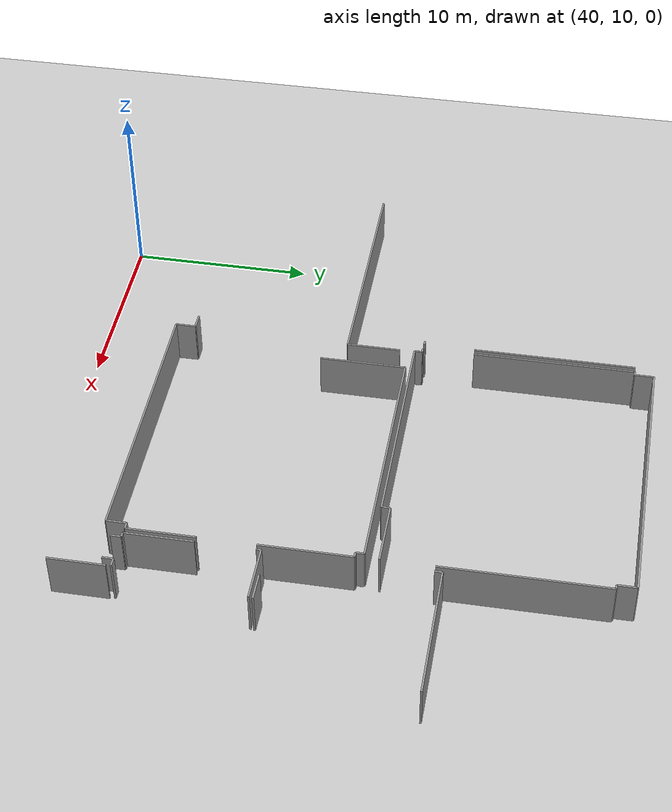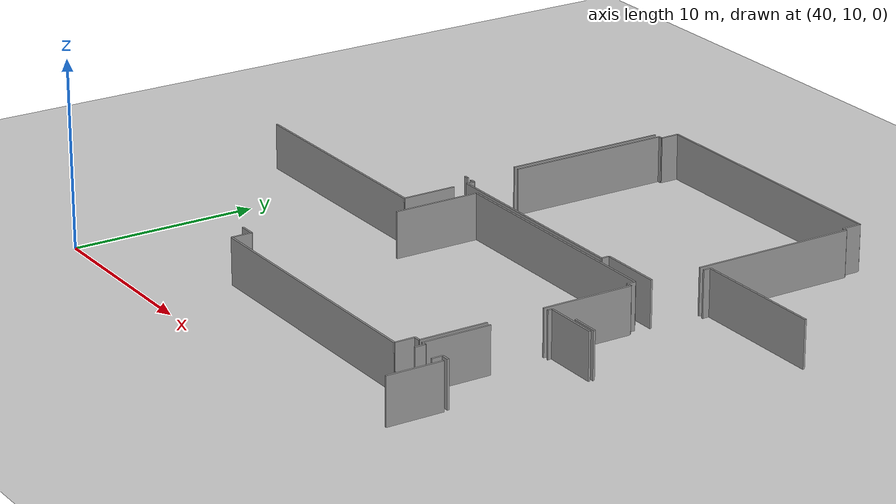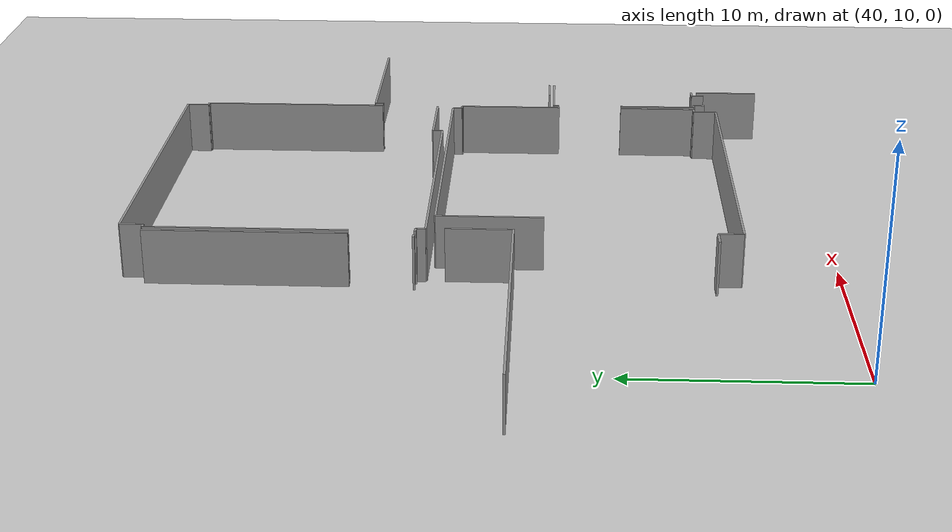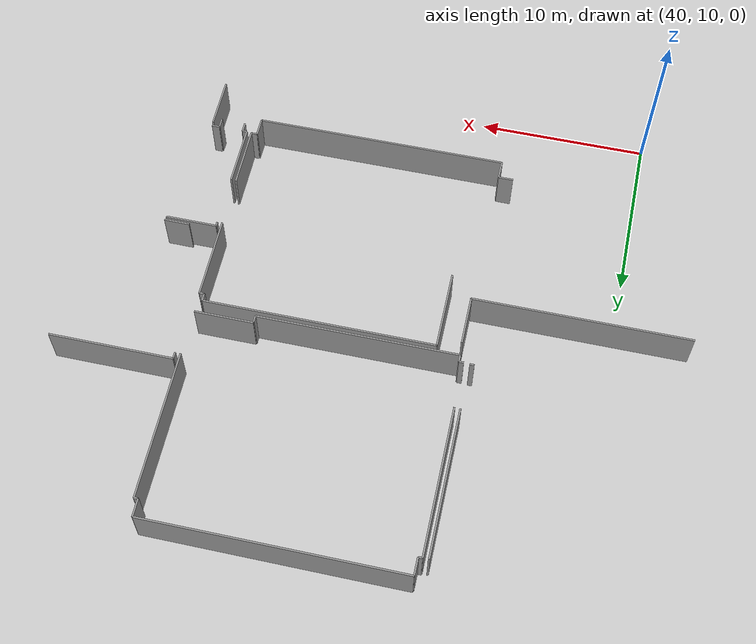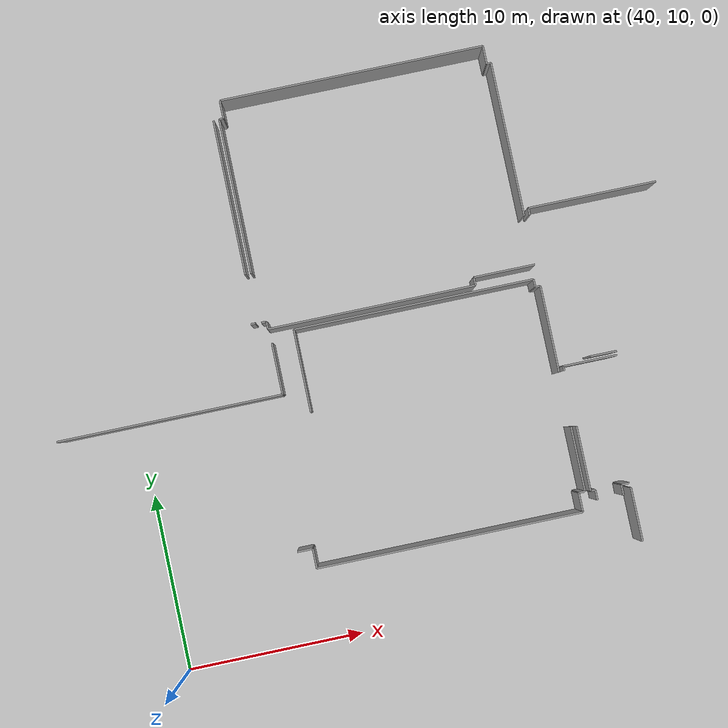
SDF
<sdf version="1.6">
 <world name="default">
  <model name="ground_plane">
   <static>1</static>
   <link name="link">
    <collision name="collision">
     <geometry><plane><normal>0 0 1</normal><size>100 100</size></plane></geometry>
     <surface><friction><ode><mu>100</mu><mu2>50</mu2></ode></friction></surface>
    </collision>
    <visual name="visual">
     <cast_shadows>0</cast_shadows>
     <geometry><plane><normal>0 0 1</normal><size>100 100</size></plane></geometry>
     <material>
      <script><uri>file://media/materials/scripts/gazebo.material</uri><name>Gazebo/Grey</name></script>
     </material>
    </visual>
   </link>
  </model>
  <model name="0510035740_A_40_1_103">
   <static>1</static>
   <link name="Wall_432">
    <collision name="Wall_432_Collision">
     <geometry><box><size>2.92177179368 0.1 2.5</size></box></geometry>
     <pose>1.46088589684 0 1.25 0 0 0</pose>
    </collision>
    <visual name="Wall_432_Visual">
     <pose>1.46088589684 0 1.25 0 0 0</pose>
     <geometry><box><size>2.92177179368 0.1 2.5</size></box></geometry>
     <material>
      <script><uri>file://media/materials/scripts/gazebo.material</uri><name>Gazebo/Grey</name></script>
      <ambient>1 1 1 1</ambient>
     </material>
    </visual>
    <pose>142.374193385 -22.6262190441 0 0 0 -1.57079632679</pose>
   </link>
   <link name="Wall_433">
    <collision name="Wall_433_Collision">
     <geometry><box><size>12.784274411 0.1 2.5</size></box></geometry>
     <pose>6.39213720551 0 1.25 0 0 0</pose>
    </collision>
    <visual name="Wall_433_Visual">
     <pose>6.39213720551 0 1.25 0 0 0</pose>
     <geometry><box><size>12.784274411 0.1 2.5</size></box></geometry>
     <material>
      <script><uri>file://media/materials/scripts/gazebo.material</uri><name>Gazebo/Grey</name></script>
      <ambient>1 1 1 1</ambient>
     </material>
    </visual>
    <pose>142.374193385 -25.5479908377 0 0 0 3.14159265359</pose>
   </link>
   <link name="Wall_436">
    <collision name="Wall_436_Collision">
     <geometry><box><size>4.71006262571 0.1 2.5</size></box></geometry>
     <pose>2.35503131286 0 1.25 0 0 0</pose>
    </collision>
    <visual name="Wall_436_Visual">
     <pose>2.35503131286 0 1.25 0 0 0</pose>
     <geometry><box><size>4.71006262571 0.1 2.5</size></box></geometry>
     <material>
      <script><uri>file://media/materials/scripts/gazebo.material</uri><name>Gazebo/Grey</name></script>
      <ambient>1 1 1 1</ambient>
     </material>
    </visual>
    <pose>143.714523201 -26.8441590579 0 0 0 1.57079632679</pose>
   </link>
   <link name="Wall_437">
    <collision name="Wall_437_Collision">
     <geometry><box><size>13.6548162154 0.1 2.5</size></box></geometry>
     <pose>6.82740810771 0 1.25 0 0 0</pose>
    </collision>
    <visual name="Wall_437_Visual">
     <pose>6.82740810771 0 1.25 0 0 0</pose>
     <geometry><box><size>13.6548162154 0.1 2.5</size></box></geometry>
     <material>
      <script><uri>file://media/materials/scripts/gazebo.material</uri><name>Gazebo/Grey</name></script>
      <ambient>1 1 1 1</ambient>
     </material>
    </visual>
    <pose>143.714523201 -22.1340964322 0 0 0 0.0</pose>
   </link>
   <link name="Wall_438">
    <collision name="Wall_438_Collision">
     <geometry><box><size>0.448468620521 0.1 2.5</size></box></geometry>
     <pose>0.224234310261 0 1.25 0 0 0</pose>
    </collision>
    <visual name="Wall_438_Visual">
     <pose>0.224234310261 0 1.25 0 0 0</pose>
     <geometry><box><size>0.448468620521 0.1 2.5</size></box></geometry>
     <material>
      <script><uri>file://media/materials/scripts/gazebo.material</uri><name>Gazebo/Grey</name></script>
      <ambient>1 1 1 1</ambient>
     </material>
    </visual>
    <pose>157.369339416 -22.1340964322 0 0 0 -1.57079632679</pose>
   </link>
   <link name="Wall_439">
    <collision name="Wall_439_Collision">
     <geometry><box><size>0.290349802986 0.1 2.5</size></box></geometry>
     <pose>0.145174901493 0 1.25 0 0 0</pose>
    </collision>
    <visual name="Wall_439_Visual">
     <pose>0.145174901493 0 1.25 0 0 0</pose>
     <geometry><box><size>0.290349802986 0.1 2.5</size></box></geometry>
     <material>
      <script><uri>file://media/materials/scripts/gazebo.material</uri><name>Gazebo/Grey</name></script>
      <ambient>1 1 1 1</ambient>
     </material>
    </visual>
    <pose>157.369339416 -22.5825650527 0 0 0 0.0</pose>
   </link>
   <link name="Wall_440">
    <collision name="Wall_440_Collision">
     <geometry><box><size>4.91411965508 0.1 2.5</size></box></geometry>
     <pose>2.45705982754 0 1.25 0 0 0</pose>
    </collision>
    <visual name="Wall_440_Visual">
     <pose>2.45705982754 0 1.25 0 0 0</pose>
     <geometry><box><size>4.91411965508 0.1 2.5</size></box></geometry>
     <material>
      <script><uri>file://media/materials/scripts/gazebo.material</uri><name>Gazebo/Grey</name></script>
      <ambient>1 1 1 1</ambient>
     </material>
    </visual>
    <pose>157.659689219 -22.5825650527 0 0 0 -1.57079632679</pose>
   </link>
   <link name="Wall_441">
    <collision name="Wall_441_Collision">
     <geometry><box><size>3.65932120581 0.1 2.5</size></box></geometry>
     <pose>1.82966060291 0 1.25 0 0 0</pose>
    </collision>
    <visual name="Wall_441_Visual">
     <pose>1.82966060291 0 1.25 0 0 0</pose>
     <geometry><box><size>3.65932120581 0.1 2.5</size></box></geometry>
     <material>
      <script><uri>file://media/materials/scripts/gazebo.material</uri><name>Gazebo/Grey</name></script>
      <ambient>1 1 1 1</ambient>
     </material>
    </visual>
    <pose>157.659689219 -30.5758139122 0 0 0 -1.57079632679</pose>
   </link>
   <link name="Wall_442">
    <collision name="Wall_442_Collision">
     <geometry><box><size>0.362937253733 0.1 2.5</size></box></geometry>
     <pose>0.181468626866 0 1.25 0 0 0</pose>
    </collision>
    <visual name="Wall_442_Visual">
     <pose>0.181468626866 0 1.25 0 0 0</pose>
     <geometry><box><size>0.362937253733 0.1 2.5</size></box></geometry>
     <material>
      <script><uri>file://media/materials/scripts/gazebo.material</uri><name>Gazebo/Grey</name></script>
      <ambient>1 1 1 1</ambient>
     </material>
    </visual>
    <pose>157.659689219 -34.235135118 0 0 0 3.14159265359</pose>
   </link>
   <link name="Wall_443">
    <collision name="Wall_443_Collision">
     <geometry><box><size>1.08830415665 0.1 2.5</size></box></geometry>
     <pose>0.544152078323 0 1.25 0 0 0</pose>
    </collision>
    <visual name="Wall_443_Visual">
     <pose>0.544152078323 0 1.25 0 0 0</pose>
     <geometry><box><size>1.08830415665 0.1 2.5</size></box></geometry>
     <material>
      <script><uri>file://media/materials/scripts/gazebo.material</uri><name>Gazebo/Grey</name></script>
      <ambient>1 1 1 1</ambient>
     </material>
    </visual>
    <pose>157.296751965 -34.235135118 0 0 0 -1.57079632679</pose>
   </link>
   <link name="Wall_444">
    <collision name="Wall_444_Collision">
     <geometry><box><size>15.0190034454 0.1 2.5</size></box></geometry>
     <pose>7.50950172268 0 1.25 0 0 0</pose>
    </collision>
    <visual name="Wall_444_Visual">
     <pose>7.50950172268 0 1.25 0 0 0</pose>
     <geometry><box><size>15.0190034454 0.1 2.5</size></box></geometry>
     <material>
      <script><uri>file://media/materials/scripts/gazebo.material</uri><name>Gazebo/Grey</name></script>
      <ambient>1 1 1 1</ambient>
     </material>
    </visual>
    <pose>157.296751965 -35.3234392746 0 0 0 3.14159265359</pose>
   </link>
   <link name="Wall_445">
    <collision name="Wall_445_Collision">
     <geometry><box><size>1.10277088634 0.1 2.5</size></box></geometry>
     <pose>0.55138544317 0 1.25 0 0 0</pose>
    </collision>
    <visual name="Wall_445_Visual">
     <pose>0.55138544317 0 1.25 0 0 0</pose>
     <geometry><box><size>1.10277088634 0.1 2.5</size></box></geometry>
     <material>
      <script><uri>file://media/materials/scripts/gazebo.material</uri><name>Gazebo/Grey</name></script>
      <ambient>1 1 1 1</ambient>
     </material>
    </visual>
    <pose>142.27774852 -35.3234392746 0 0 0 1.57079632679</pose>
   </link>
   <link name="Wall_446">
    <collision name="Wall_446_Collision">
     <geometry><box><size>0.870795606683 0.1 2.5</size></box></geometry>
     <pose>0.435397803341 0 1.25 0 0 0</pose>
    </collision>
    <visual name="Wall_446_Visual">
     <pose>0.435397803341 0 1.25 0 0 0</pose>
     <geometry><box><size>0.870795606683 0.1 2.5</size></box></geometry>
     <material>
      <script><uri>file://media/materials/scripts/gazebo.material</uri><name>Gazebo/Grey</name></script>
      <ambient>1 1 1 1</ambient>
     </material>
    </visual>
    <pose>142.27774852 -34.2206683883 0 0 0 3.14159265359</pose>
   </link>
   <link name="Wall_457">
    <collision name="Wall_457_Collision">
     <geometry><box><size>8.84247127275 0.1 2.5</size></box></geometry>
     <pose>4.42123563638 0 1.25 0 0 0</pose>
    </collision>
    <visual name="Wall_457_Visual">
     <pose>4.42123563638 0 1.25 0 0 0</pose>
     <geometry><box><size>8.84247127275 0.1 2.5</size></box></geometry>
     <material>
      <script><uri>file://media/materials/scripts/gazebo.material</uri><name>Gazebo/Grey</name></script>
      <ambient>1 1 1 1</ambient>
     </material>
    </visual>
    <pose>141.697302716 -9.71123646123 0 0 0 -1.57079632679</pose>
   </link>
   <link name="Wall_458">
    <collision name="Wall_458_Collision">
     <geometry><box><size>0.27055322551 0.1 2.5</size></box></geometry>
     <pose>0.135276612755 0 1.25 0 0 0</pose>
    </collision>
    <visual name="Wall_458_Visual">
     <pose>0.135276612755 0 1.25 0 0 0</pose>
     <geometry><box><size>0.27055322551 0.1 2.5</size></box></geometry>
     <material>
      <script><uri>file://media/materials/scripts/gazebo.material</uri><name>Gazebo/Grey</name></script>
      <ambient>1 1 1 1</ambient>
     </material>
    </visual>
    <pose>141.697302716 -21.3564462605 0 0 0 3.14159265359</pose>
   </link>
   <link name="Wall_462">
    <collision name="Wall_462_Collision">
     <geometry><box><size>0.426641624842 0.1 2.5</size></box></geometry>
     <pose>0.213320812421 0 1.25 0 0 0</pose>
    </collision>
    <visual name="Wall_462_Visual">
     <pose>0.213320812421 0 1.25 0 0 0</pose>
     <geometry><box><size>0.426641624842 0.1 2.5</size></box></geometry>
     <material>
      <script><uri>file://media/materials/scripts/gazebo.material</uri><name>Gazebo/Grey</name></script>
      <ambient>1 1 1 1</ambient>
     </material>
    </visual>
    <pose>142.313534641 -21.8160821812 0 0 0 1.57079632679</pose>
   </link>
   <link name="Wall_463">
    <collision name="Wall_463_Collision">
     <geometry><box><size>0.279943909697 0.1 2.5</size></box></geometry>
     <pose>0.139971954849 0 1.25 0 0 0</pose>
    </collision>
    <visual name="Wall_463_Visual">
     <pose>0.139971954849 0 1.25 0 0 0</pose>
     <geometry><box><size>0.279943909697 0.1 2.5</size></box></geometry>
     <material>
      <script><uri>file://media/materials/scripts/gazebo.material</uri><name>Gazebo/Grey</name></script>
      <ambient>1 1 1 1</ambient>
     </material>
    </visual>
    <pose>142.313534641 -21.3894405563 0 0 0 3.14159265359</pose>
   </link>
   <link name="Wall_464">
    <collision name="Wall_464_Collision">
     <geometry><box><size>8.84856252736 0.1 2.5</size></box></geometry>
     <pose>4.42428126368 0 1.25 0 0 0</pose>
    </collision>
    <visual name="Wall_464_Visual">
     <pose>4.42428126368 0 1.25 0 0 0</pose>
     <geometry><box><size>8.84856252736 0.1 2.5</size></box></geometry>
     <material>
      <script><uri>file://media/materials/scripts/gazebo.material</uri><name>Gazebo/Grey</name></script>
      <ambient>1 1 1 1</ambient>
     </material>
    </visual>
    <pose>142.033590731 -18.5529463272 0 0 0 1.57079632679</pose>
   </link>
   <link name="Wall_465">
    <collision name="Wall_465_Collision">
     <geometry><box><size>0.239843150194 0.1 2.5</size></box></geometry>
     <pose>0.119921575097 0 1.25 0 0 0</pose>
    </collision>
    <visual name="Wall_465_Visual">
     <pose>0.119921575097 0 1.25 0 0 0</pose>
     <geometry><box><size>0.239843150194 0.1 2.5</size></box></geometry>
     <material>
      <script><uri>file://media/materials/scripts/gazebo.material</uri><name>Gazebo/Grey</name></script>
      <ambient>1 1 1 1</ambient>
     </material>
    </visual>
    <pose>142.033590731 -9.7043837998 0 0 0 0.0</pose>
   </link>
   <link name="Wall_466">
    <collision name="Wall_466_Collision">
     <geometry><box><size>1.03145244697 0.1 2.5</size></box></geometry>
     <pose>0.515726223486 0 1.25 0 0 0</pose>
    </collision>
    <visual name="Wall_466_Visual">
     <pose>0.515726223486 0 1.25 0 0 0</pose>
     <geometry><box><size>1.03145244697 0.1 2.5</size></box></geometry>
     <material>
      <script><uri>file://media/materials/scripts/gazebo.material</uri><name>Gazebo/Grey</name></script>
      <ambient>1 1 1 1</ambient>
     </material>
    </visual>
    <pose>142.273433881 -9.7043837998 0 0 0 1.57079632679</pose>
   </link>
   <link name="Wall_467">
    <collision name="Wall_467_Collision">
     <geometry><box><size>15.0981897553 0.1 2.5</size></box></geometry>
     <pose>7.54909487764 0 1.25 0 0 0</pose>
    </collision>
    <visual name="Wall_467_Visual">
     <pose>7.54909487764 0 1.25 0 0 0</pose>
     <geometry><box><size>15.0981897553 0.1 2.5</size></box></geometry>
     <material>
      <script><uri>file://media/materials/scripts/gazebo.material</uri><name>Gazebo/Grey</name></script>
      <ambient>1 1 1 1</ambient>
     </material>
    </visual>
    <pose>142.273433881 -8.67293135283 0 0 0 0.0</pose>
   </link>
   <link name="Wall_468">
    <collision name="Wall_468_Collision">
     <geometry><box><size>1.04236594481 0.1 2.5</size></box></geometry>
     <pose>0.521182972405 0 1.25 0 0 0</pose>
    </collision>
    <visual name="Wall_468_Visual">
     <pose>0.521182972405 0 1.25 0 0 0</pose>
     <geometry><box><size>1.04236594481 0.1 2.5</size></box></geometry>
     <material>
      <script><uri>file://media/materials/scripts/gazebo.material</uri><name>Gazebo/Grey</name></script>
      <ambient>1 1 1 1</ambient>
     </material>
    </visual>
    <pose>157.371623637 -8.67293135283 0 0 0 -1.57079632679</pose>
   </link>
   <link name="Wall_469">
    <collision name="Wall_469_Collision">
     <geometry><box><size>0.241365963846 0.1 2.5</size></box></geometry>
     <pose>0.120682981923 0 1.25 0 0 0</pose>
    </collision>
    <visual name="Wall_469_Visual">
     <pose>0.120682981923 0 1.25 0 0 0</pose>
     <geometry><box><size>0.241365963846 0.1 2.5</size></box></geometry>
     <material>
      <script><uri>file://media/materials/scripts/gazebo.material</uri><name>Gazebo/Grey</name></script>
      <ambient>1 1 1 1</ambient>
     </material>
    </visual>
    <pose>157.371623637 -9.71529729764 0 0 0 0.0</pose>
   </link>
   <link name="Wall_470">
    <collision name="Wall_470_Collision">
     <geometry><box><size>8.83764902952 0.1 2.5</size></box></geometry>
     <pose>4.41882451476 0 1.25 0 0 0</pose>
    </collision>
    <visual name="Wall_470_Visual">
     <pose>4.41882451476 0 1.25 0 0 0</pose>
     <geometry><box><size>8.83764902952 0.1 2.5</size></box></geometry>
     <material>
      <script><uri>file://media/materials/scripts/gazebo.material</uri><name>Gazebo/Grey</name></script>
      <ambient>1 1 1 1</ambient>
     </material>
    </visual>
    <pose>157.6129896 -9.71529729764 0 0 0 -1.57079632679</pose>
   </link>
   <link name="Wall_471">
    <collision name="Wall_471_Collision">
     <geometry><box><size>3.4783601835 0.1 2.5</size></box></geometry>
     <pose>1.73918009175 0 1.25 0 0 0</pose>
    </collision>
    <visual name="Wall_471_Visual">
     <pose>1.73918009175 0 1.25 0 0 0</pose>
     <geometry><box><size>3.4783601835 0.1 2.5</size></box></geometry>
     <material>
      <script><uri>file://media/materials/scripts/gazebo.material</uri><name>Gazebo/Grey</name></script>
      <ambient>1 1 1 1</ambient>
     </material>
    </visual>
    <pose>157.6129896 -21.3462941695 0 0 0 3.14159265359</pose>
   </link>
   <link name="Wall_472">
    <collision name="Wall_472_Collision">
     <geometry><box><size>0.449737631898 0.1 2.5</size></box></geometry>
     <pose>0.224868815949 0 1.25 0 0 0</pose>
    </collision>
    <visual name="Wall_472_Visual">
     <pose>0.224868815949 0 1.25 0 0 0</pose>
     <geometry><box><size>0.449737631898 0.1 2.5</size></box></geometry>
     <material>
      <script><uri>file://media/materials/scripts/gazebo.material</uri><name>Gazebo/Grey</name></script>
      <ambient>1 1 1 1</ambient>
     </material>
    </visual>
    <pose>154.134629417 -21.3462941695 0 0 0 -1.57079632679</pose>
   </link>
   <link name="Wall_473">
    <collision name="Wall_473_Collision">
     <geometry><box><size>11.8211117804 0.1 2.5</size></box></geometry>
     <pose>5.91055589018 0 1.25 0 0 0</pose>
    </collision>
    <visual name="Wall_473_Visual">
     <pose>5.91055589018 0 1.25 0 0 0</pose>
     <geometry><box><size>11.8211117804 0.1 2.5</size></box></geometry>
     <material>
      <script><uri>file://media/materials/scripts/gazebo.material</uri><name>Gazebo/Grey</name></script>
      <ambient>1 1 1 1</ambient>
     </material>
    </visual>
    <pose>154.134629417 -21.7960318014 0 0 0 -3.13989650269</pose>
   </link>
   <link name="Wall_474">
    <collision name="Wall_474_Collision">
     <geometry><box><size>0.400499990482 0.1 2.5</size></box></geometry>
     <pose>0.200249995241 0 1.25 0 0 0</pose>
    </collision>
    <visual name="Wall_474_Visual">
     <pose>0.200249995241 0 1.25 0 0 0</pose>
     <geometry><box><size>0.400499990482 0.1 2.5</size></box></geometry>
     <material>
      <script><uri>file://media/materials/scripts/gazebo.material</uri><name>Gazebo/Grey</name></script>
      <ambient>1 1 1 1</ambient>
     </material>
    </visual>
    <pose>157.932780467 -18.5694434751 0 0 0 1.57079632679</pose>
   </link>
   <link name="Wall_475">
    <collision name="Wall_475_Collision">
     <geometry><box><size>7.29783062505 0.1 2.5</size></box></geometry>
     <pose>3.64891531253 0 1.25 0 0 0</pose>
    </collision>
    <visual name="Wall_475_Visual">
     <pose>3.64891531253 0 1.25 0 0 0</pose>
     <geometry><box><size>7.29783062505 0.1 2.5</size></box></geometry>
     <material>
      <script><uri>file://media/materials/scripts/gazebo.material</uri><name>Gazebo/Grey</name></script>
      <ambient>1 1 1 1</ambient>
     </material>
    </visual>
    <pose>157.932780467 -18.1689434846 0 0 0 0.0</pose>
   </link>
   <link name="Wall_479">
    <collision name="Wall_479_Collision">
     <geometry><box><size>1.51419205337 0.1 2.5</size></box></geometry>
     <pose>0.757096026687 0 1.25 0 0 0</pose>
    </collision>
    <visual name="Wall_479_Visual">
     <pose>0.757096026687 0 1.25 0 0 0</pose>
     <geometry><box><size>1.51419205337 0.1 2.5</size></box></geometry>
     <material>
      <script><uri>file://media/materials/scripts/gazebo.material</uri><name>Gazebo/Grey</name></script>
      <ambient>1 1 1 1</ambient>
     </material>
    </visual>
    <pose>161.049472409 -26.9969480276 0 0 0 3.13840795098</pose>
   </link>
   <link name="Wall_492">
    <collision name="Wall_492_Collision">
     <geometry><box><size>0.562933446698 0.1 2.5</size></box></geometry>
     <pose>0.281466723349 0 1.25 0 0 0</pose>
    </collision>
    <visual name="Wall_492_Visual">
     <pose>0.281466723349 0 1.25 0 0 0</pose>
     <geometry><box><size>0.562933446698 0.1 2.5</size></box></geometry>
     <material>
      <script><uri>file://media/materials/scripts/gazebo.material</uri><name>Gazebo/Grey</name></script>
      <ambient>1 1 1 1</ambient>
     </material>
    </visual>
    <pose>158.226937304 -34.8366465105 0 0 0 1.57079632679</pose>
   </link>
   <link name="Wall_493">
    <collision name="Wall_493_Collision">
     <geometry><box><size>0.26725379593 0.1 2.5</size></box></geometry>
     <pose>0.133626897965 0 1.25 0 0 0</pose>
    </collision>
    <visual name="Wall_493_Visual">
     <pose>0.133626897965 0 1.25 0 0 0</pose>
     <geometry><box><size>0.26725379593 0.1 2.5</size></box></geometry>
     <material>
      <script><uri>file://media/materials/scripts/gazebo.material</uri><name>Gazebo/Grey</name></script>
      <ambient>1 1 1 1</ambient>
     </material>
    </visual>
    <pose>158.226937304 -34.2737130638 0 0 0 3.14159265359</pose>
   </link>
   <link name="Wall_494">
    <collision name="Wall_494_Collision">
     <geometry><box><size>3.66795048318 0.1 2.5</size></box></geometry>
     <pose>1.83397524159 0 1.25 0 0 0</pose>
    </collision>
    <visual name="Wall_494_Visual">
     <pose>1.83397524159 0 1.25 0 0 0</pose>
     <geometry><box><size>3.66795048318 0.1 2.5</size></box></geometry>
     <material>
      <script><uri>file://media/materials/scripts/gazebo.material</uri><name>Gazebo/Grey</name></script>
      <ambient>1 1 1 1</ambient>
     </material>
    </visual>
    <pose>157.959683509 -34.2737130638 0 0 0 1.57079632679</pose>
   </link>
   <link name="Wall_495">
    <collision name="Wall_495_Collision">
     <geometry><box><size>0.252279461685 0.1 2.5</size></box></geometry>
     <pose>0.126139730843 0 1.25 0 0 0</pose>
    </collision>
    <visual name="Wall_495_Visual">
     <pose>0.126139730843 0 1.25 0 0 0</pose>
     <geometry><box><size>0.252279461685 0.1 2.5</size></box></geometry>
     <material>
      <script><uri>file://media/materials/scripts/gazebo.material</uri><name>Gazebo/Grey</name></script>
      <ambient>1 1 1 1</ambient>
     </material>
    </visual>
    <pose>157.959683509 -27.4715582825 0 0 0 1.57079632679</pose>
   </link>
   <link name="Wall_496">
    <collision name="Wall_496_Collision">
     <geometry><box><size>3.05197236093 0.1 2.5</size></box></geometry>
     <pose>1.52598618047 0 1.25 0 0 0</pose>
    </collision>
    <visual name="Wall_496_Visual">
     <pose>1.52598618047 0 1.25 0 0 0</pose>
     <geometry><box><size>3.05197236093 0.1 2.5</size></box></geometry>
     <material>
      <script><uri>file://media/materials/scripts/gazebo.material</uri><name>Gazebo/Grey</name></script>
      <ambient>1 1 1 1</ambient>
     </material>
    </visual>
    <pose>157.959683509 -27.2192788208 0 0 0 0.0</pose>
   </link>
   <link name="Wall_501">
    <collision name="Wall_501_Collision">
     <geometry><box><size>0.460651129737 0.1 2.5</size></box></geometry>
     <pose>0.230325564869 0 1.25 0 0 0</pose>
    </collision>
    <visual name="Wall_501_Visual">
     <pose>0.230325564869 0 1.25 0 0 0</pose>
     <geometry><box><size>0.460651129737 0.1 2.5</size></box></geometry>
     <material>
      <script><uri>file://media/materials/scripts/gazebo.material</uri><name>Gazebo/Grey</name></script>
      <ambient>1 1 1 1</ambient>
     </material>
    </visual>
    <pose>160.161418247 -34.2856417708 0 0 0 3.14159265359</pose>
   </link>
   <link name="Wall_502">
    <collision name="Wall_502_Collision">
     <geometry><box><size>0.588059871957 0.1 2.5</size></box></geometry>
     <pose>0.294029935978 0 1.25 0 0 0</pose>
    </collision>
    <visual name="Wall_502_Visual">
     <pose>0.294029935978 0 1.25 0 0 0</pose>
     <geometry><box><size>0.588059871957 0.1 2.5</size></box></geometry>
     <material>
      <script><uri>file://media/materials/scripts/gazebo.material</uri><name>Gazebo/Grey</name></script>
      <ambient>1 1 1 1</ambient>
     </material>
    </visual>
    <pose>159.700767117 -34.2856417708 0 0 0 -1.57079632679</pose>
   </link>
   <link name="Wall_503">
    <collision name="Wall_503_Collision">
     <geometry><box><size>3.02836874933 0.1 2.5</size></box></geometry>
     <pose>1.51418437466 0 1.25 0 0 0</pose>
    </collision>
    <visual name="Wall_503_Visual">
     <pose>1.51418437466 0 1.25 0 0 0</pose>
     <geometry><box><size>3.02836874933 0.1 2.5</size></box></geometry>
     <material>
      <script><uri>file://media/materials/scripts/gazebo.material</uri><name>Gazebo/Grey</name></script>
      <ambient>1 1 1 1</ambient>
     </material>
    </visual>
    <pose>160.180453418 -37.5746654569 0 0 0 1.57079632679</pose>
   </link>
   <pose>-93.95 49.6557238758 0 0 0 0</pose>
  </model>
 </world>
</sdf>
